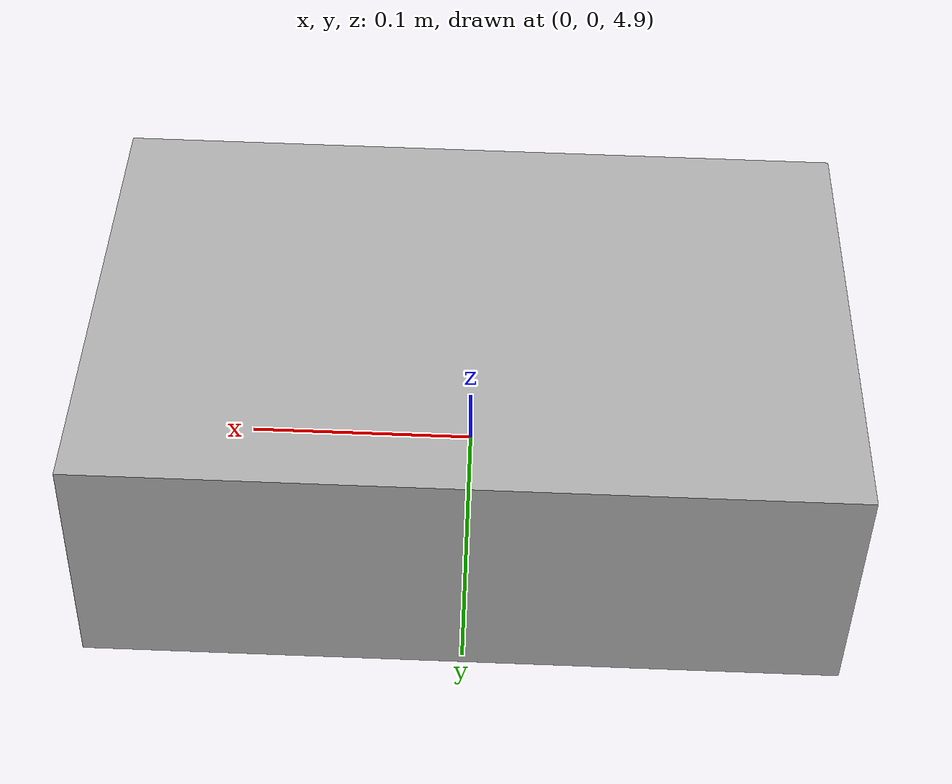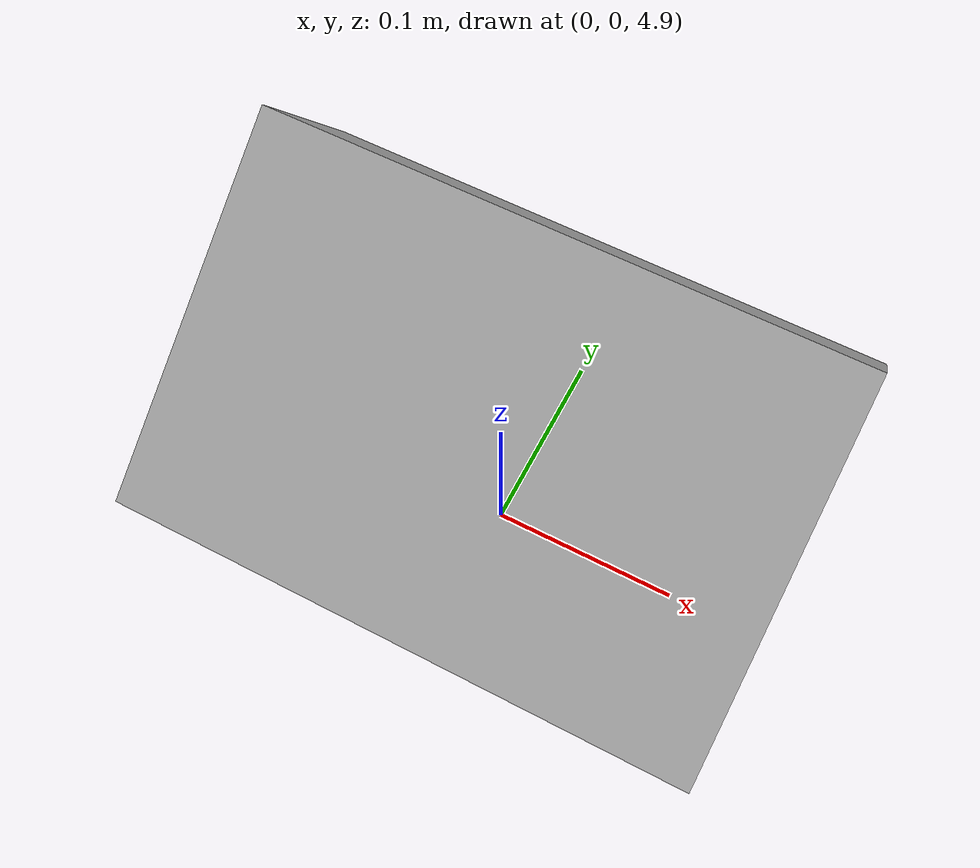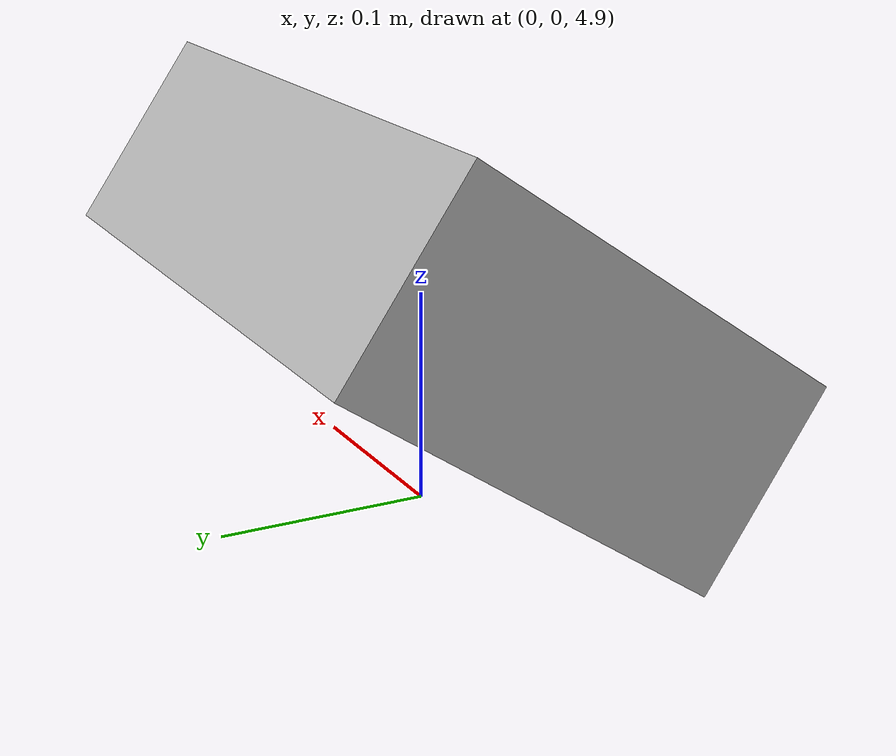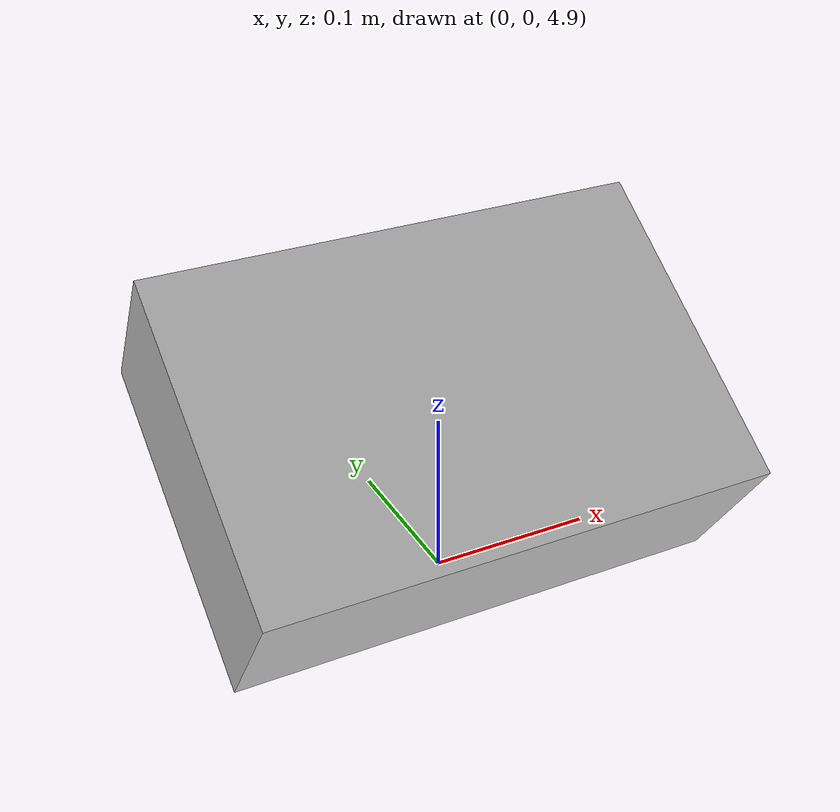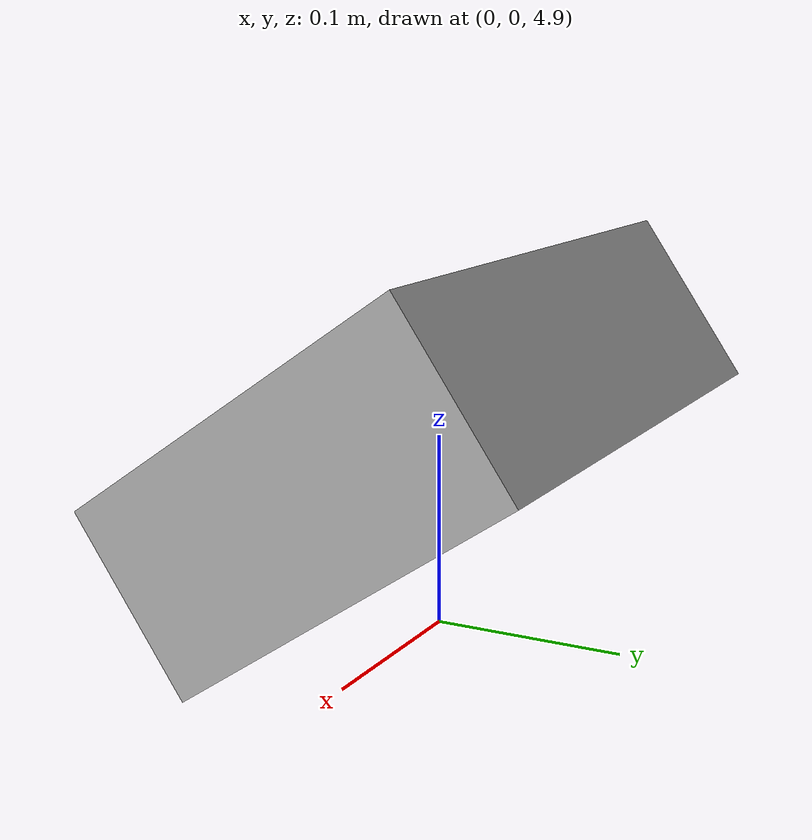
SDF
<?xml version="1.0"?>
<sdf version="1.8">
  <world name="floating_box">
    <physics name="200hz" type="ignored">
      <max_step_size>0.005</max_step_size>
      <real_time_factor>1.0</real_time_factor>
    </physics>

    <plugin filename="ignition-gazebo-physics-system"
            name="ignition::gazebo::systems::Physics"/>
    <plugin filename="ignition-gazebo-user-commands-system"
            name="ignition::gazebo::systems::UserCommands"/>
    <plugin filename="ignition-gazebo-scene-broadcaster-system"
            name="ignition::gazebo::systems::SceneBroadcaster"/>

    <gravity>0 0 -9.81</gravity>

    <light type="directional" name="sun">
      <pose>0 0 10 0 0 0</pose>
      <diffuse>0.8 0.8 0.8 1</diffuse>
      <specular>0.2 0.2 0.2 1</specular>
      <direction>-0.5 0.1 -0.9</direction>
    </light>

    <!-- Start tilted (roll 0.6 rad) and high; free-fall with constant orientation. -->
    <model name="floating_box">
      <pose>0 0 5 0.6 0 0</pose>
      <link name="base_link">
        <inertial>
          <mass>1.0</mass>
          <inertia>
            <ixx>0.00417</ixx><iyy>0.00833</iyy><izz>0.01083</izz>
            <ixy>0</ixy><ixz>0</ixz><iyz>0</iyz>
          </inertia>
        </inertial>
        <visual name="visual">
          <geometry><box><size>0.3 0.2 0.1</size></box></geometry>
        </visual>
        <collision name="collision">
          <geometry><box><size>0.3 0.2 0.1</size></box></geometry>
        </collision>
      </link>

      <!-- Ground-truth odometry: full 3D pose (world) + twist (base/body frame),
           published on the ign topic /base_odom, bridged to ROS by the launch. -->
      <plugin filename="ignition-gazebo-odometry-publisher-system"
              name="ignition::gazebo::systems::OdometryPublisher">
        <dimensions>3</dimensions>
        <odom_frame>world</odom_frame>
        <robot_base_frame>base_link</robot_base_frame>
        <odom_topic>/base_odom</odom_topic>
        <odom_publish_frequency>200</odom_publish_frequency>
      </plugin>
    </model>
  </world>
</sdf>
